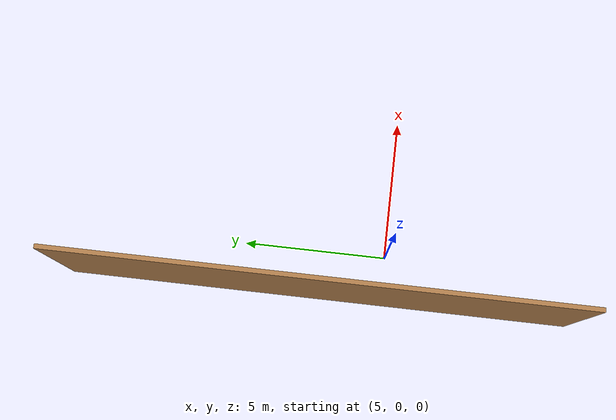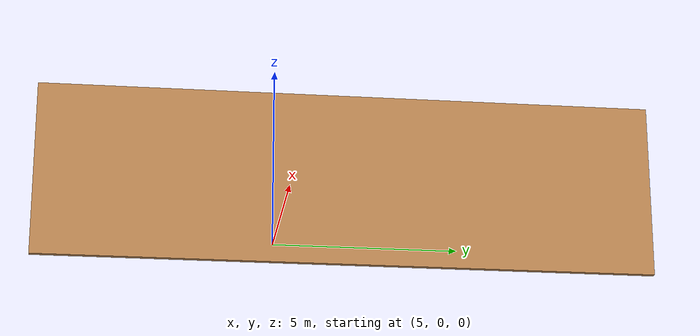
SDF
<?xml version='1.0'?>
<sdf version='1.7'>
  <model name='wall2'>
    <pose>1.726 2.22 0 0 -0 0</pose>
    <link name='Wall_37'>
      <collision name='Wall_37_Collision'>
        <geometry>
          <box>
            <size>17.5 0.15 5</size>
          </box>
        </geometry>
        <pose>0 0 2.5 0 -0 0</pose>
      </collision>
      <visual name='Wall_37_Visual'>
        <pose>0 0 2.5 0 -0 0</pose>
        <geometry>
          <box>
            <size>17.5 0.15 5</size>
          </box>
        </geometry>
        <material>
          <script>
            <uri>file://media/materials/scripts/gazebo.material</uri>
            <name>Gazebo/Wood</name>
          </script>
          <ambient>1 1 1 1</ambient>
        </material>
        <meta>
          <layer>0</layer>
        </meta>
      </visual>
      <pose>1.651 -0 0 0 -0 1.5708</pose>
    </link>
    <static>1</static>
  </model>
</sdf>
